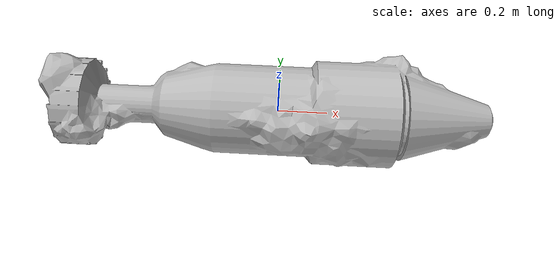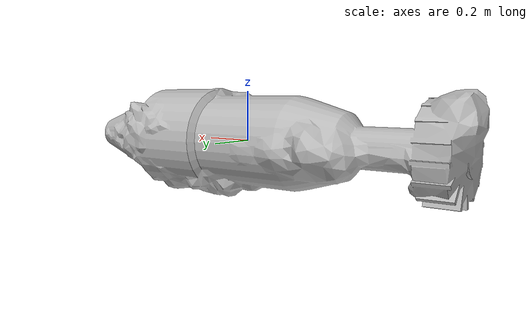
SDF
<?xml version="1.0"?>
<sdf version="1.6">
  <model name="uxo_b">
    <static>false</static>
    <link name="base_link">
      <inertial>
        <mass>15</mass>
        <inertia>
          <ixx>0.17</ixx>
          <ixy>0.0</ixy>
          <ixz>0.0</ixz>
          <iyy>1.9</iyy>
          <iyz>0.0</iyz>
          <izz>1.9</izz>
        </inertia>
      </inertial>
      <visual name="visual">
        <geometry>
           <mesh>
            <uri>file://uxo_b/meshes/uxo_b.dae</uri>
          </mesh>
        </geometry>
      </visual>
      <collision name="collision">
        <pose>0 0 0 0 0 0</pose>
        <geometry>
          <mesh>
            <uri>file://uxo_b/meshes/uxo_b_collision.dae</uri>
          </mesh>
        </geometry>
      </collision>
    </link>
  </model>
</sdf>
